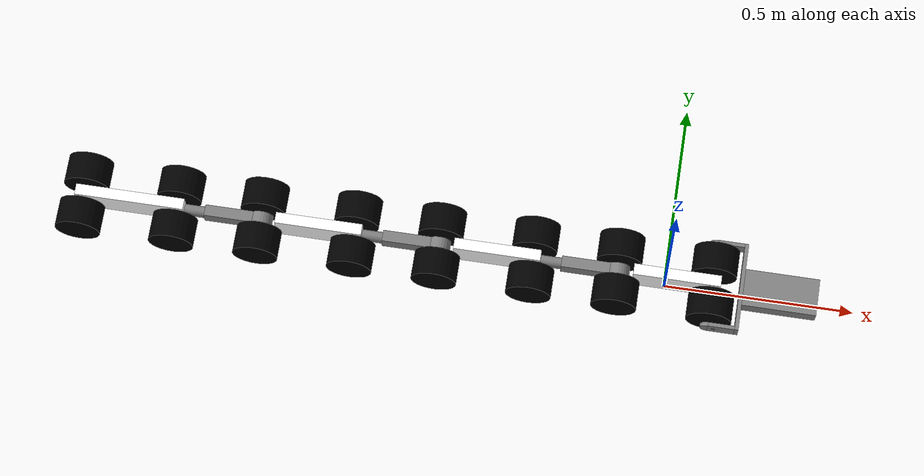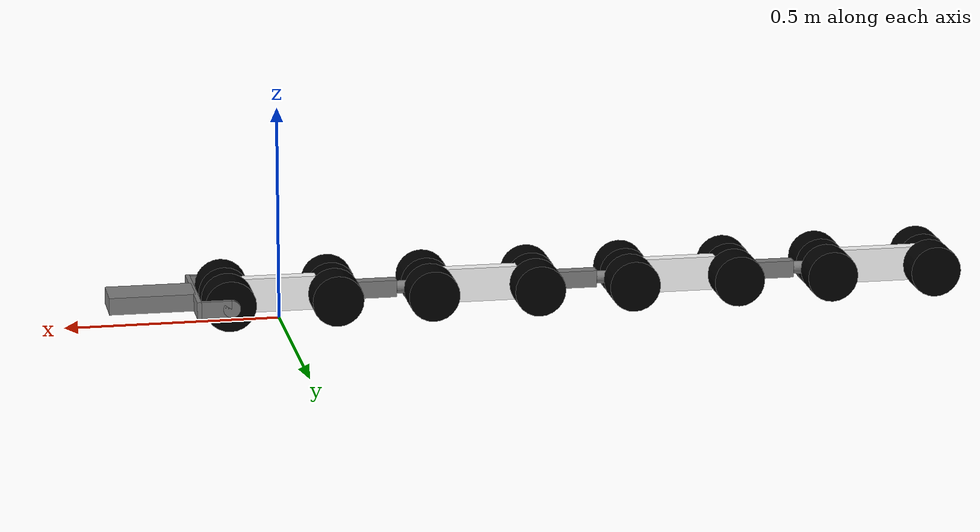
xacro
<?xml version="1.0"?>
<robot xmlns:xacro="http://www.ros.org/wiki/xacro"  name="reseq_gazebo">

  <xacro:arg name="use_ros2_control" default="true"/>
  <xacro:arg name="sim_mode" default="false"/>

  <xacro:include filename="inertial_macros.xacro" />
  <xacro:include filename="reseq_parameters.xacro" />
  <xacro:include filename="reseq_body.xacro" />
  <xacro:include filename="reseq_arm_mk1.xacro" />
  <xacro:include filename="ros2_control.xacro" />

</robot>

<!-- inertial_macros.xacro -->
<robot xmlns:xacro="http://www.ros.org/wiki/xacro" >

    <!-- Specify some standard inertial calculations https://en.wikipedia.org/wiki/List_of_moments_of_inertia -->
    <!-- These make use of xacro's mathematical functionality -->

    <xacro:macro name="inertial_sphere" params="mass radius *origin">
        <inertial>
            <xacro:insert_block name="origin"/>
            <mass value="${mass}" />
            <inertia ixx="${(2/5) * mass * (radius*radius)}" ixy="0.0" ixz="0.0"
                    iyy="${(2/5) * mass * (radius*radius)}" iyz="0.0"
                    izz="${(2/5) * mass * (radius*radius)}" />
        </inertial>
    </xacro:macro>

    <xacro:macro name="inertial_box" params="mass x y z *origin">
        <inertial>
            <xacro:insert_block name="origin"/>
            <mass value="${mass}" />
            <inertia ixx="${(1/12) * mass * (y*y+z*z)}" ixy="0.0" ixz="0.0"
                    iyy="${(1/12) * mass * (x*x+z*z)}" iyz="0.0"
                    izz="${(1/12) * mass * (x*x+y*y)}" />
        </inertial>
    </xacro:macro>

    <!-- definition of three inertial cylinder with different inertial matrix according to the orientation of
    the axis aligned to the cylinder length-->

    <!-- x axis is aligned to the cylinder length -->
    <xacro:macro name="inertial_cylinder_x" params="mass length radius *origin">
        <inertial>
            <xacro:insert_block name="origin"/>
            <mass value="${mass}" />
            <inertia ixx="${(1/2) * mass * (radius*radius)}" ixy="0.0" ixz="0.0"
                    iyy="${(1/12) * mass * (3*radius*radius + length*length)}" iyz="0.0"
                    izz="${(1/12) * mass * (3*radius*radius + length*length)}" />

        </inertial>
    </xacro:macro>

    <!-- y axis is aligned to the cylinder length -->
    <xacro:macro name="inertial_cylinder_y" params="mass length radius *origin">
        <inertial>
            <xacro:insert_block name="origin"/>
            <mass value="${mass}" />
            <inertia ixx="${(1/12) * mass * (3*radius*radius + length*length)}" ixy="0.0" ixz="0.0"
                    iyy="${(1/2) * mass * (radius*radius)}" iyz="0.0"
                    izz="${(1/12) * mass * (3*radius*radius + length*length)}" />
        </inertial>
    </xacro:macro>

    <!-- z axis is aligned to the cylinder length -->
    <xacro:macro name="inertial_cylinder_z" params="mass length radius *origin">
        <inertial>
            <xacro:insert_block name="origin"/>
            <mass value="${mass}" />
            <inertia ixx="${(1/12) * mass * (3*radius*radius + length*length)}" ixy="0.0" ixz="0.0"
                    iyy="${(1/12) * mass * (3*radius*radius + length*length)}" iyz="0.0"
                    izz="${(1/2) * mass * (radius*radius)}" />
        </inertial>
    </xacro:macro>

</robot>

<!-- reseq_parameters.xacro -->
<robot xmlns:xacro="http://www.ros.org/wiki/xacro">

  <!-- See 'Parameters.pdf' pdf for parameters meaning (when it will exist ;) ) -->
  <!-- All values are in meters, radiants, kg -->

  <xacro:property name="toll" value="0.01"/>

  <!-- chassis related -->
  <xacro:property name="WheelBase" value="0.25"/>
  <xacro:property name="EquivalentWheelDiameter" value="0.12"/>
  <xacro:property name="ModuleWidth" value="0.2"/>
  <xacro:property name="TrackWidth" value="0.075"/>
  <xacro:property name="ChassisTopAndBottomClearance" value="0.02"/>

  <xacro:property name="WheelMass" value="0.1"/>
  <xacro:property name="ChassisMass" value="2.5"/>

  <!-- joint related -->
  <xacro:property name="JointDiameter" value="0.06"/>
  <xacro:property name="JointA" value="0.15"/>
  <xacro:property name="JointB" value="0.2"/>
  <xacro:property name="JointABottomClearance" value="0.04"/>

  <xacro:property name="pitch" value="${pi/2}"/>
  <xacro:property name="roll" value="${pi*0.9}"/>
  <xacro:property name="yaw" value="${pi/4}"/>

  <xacro:property name="JointAMass" value="0.1"/>
  <xacro:property name="JointBMass" value="0.05"/>

  <!-- arm related -->
  <xacro:property name="ForkThickness" value="0.01"/>
  <xacro:property name="ForkHeight" value="0.04"/>
  <xacro:property name="JetsonHolderLength" value="0.2"/>
  <xacro:property name="JetsonHolderWidth" value="0.1"/>

  <!-- Colors (from 0 to 1) -->
  <material name="ChassisColor">
    <color rgba="1 1 1 1" />
  </material>
  <material name="WheelColor">
    <color rgba="0 0 0 1" />
  </material>
  <material name="JointColor">
    <color rgba="0.5 0.5 0.5 1" />
  </material>
  <material name="ArmColor">
    <color rgba="0.5 0.5 0.5 1" />
  </material>

</robot>

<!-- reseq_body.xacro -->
<robot xmlns:xacro="http://www.ros.org/wiki/xacro"  name="reseq_gazebo">

  <!-- This is a parametric description of reseq with 4 modules -->

  <!-- BASE LINK (center of equivalent wheel of module 1)-->
  <link name="base_link" />

  <!-- CHASSIS1 -->
  <joint name="chassis1_joint" type="fixed">
    <parent link="base_link"/>
    <child link="chassis1_link"/>
    <!-- leaving 1/3 of the EquivalentWheelDiameter from front (origin is in the center of eq wheel, at the bottom of the chassis) -->
    <origin xyz="0 0 ${(EquivalentWheelDiameter-2*ChassisTopAndBottomClearance)/2+ChassisTopAndBottomClearance}"/>
  </joint>

  <link name="chassis1_link">
    <visual>
      <origin xyz="${EquivalentWheelDiameter/12+(toll+JointDiameter/2)/2} 0 0"/>
      <geometry>
        <!-- leaving 1/3 of the EquivalentWheelDiameter from front and toll from Joint and Tracks (for clearance) -->
        <box size="${WheelBase-JointDiameter/2-toll+EquivalentWheelDiameter*2/3-EquivalentWheelDiameter/2} ${ModuleWidth-2*TrackWidth-2*toll} ${EquivalentWheelDiameter-2*ChassisTopAndBottomClearance}"/>
      </geometry>
      <material name="ChassisColor"/>
    </visual>

    <collision>
      <origin xyz="${EquivalentWheelDiameter/12+(toll+JointDiameter/2)/2} 0 0"/>
      <geometry>
        <!-- leaving 1/3 of the EquivalentWheelDiameter from front and toll from Joint and Tracks (for clearance) -->
        <box size="${WheelBase-JointDiameter/2-toll+EquivalentWheelDiameter*2/3-EquivalentWheelDiameter/2} ${ModuleWidth-2*TrackWidth-2*toll} ${EquivalentWheelDiameter-2*ChassisTopAndBottomClearance}"/>
      </geometry>
    </collision>

    <xacro:inertial_box mass="${ChassisMass}" x="${WheelBase-JointDiameter/2-toll+EquivalentWheelDiameter*2/3-EquivalentWheelDiameter/2}" y="${ModuleWidth-2*TrackWidth-2*toll}" z="${EquivalentWheelDiameter-2*ChassisTopAndBottomClearance}">
      <origin xyz="${EquivalentWheelDiameter/12+(toll+JointDiameter/2)/2} 0 0" rpy="0 0 0"/>
    </xacro:inertial_box>
  </link>

  <gazebo reference="chassis1_link">
    <material>Gazebo/White</material>
  </gazebo>

  <!-- LEFT FRONT WHEEL 1-->
  <joint name="left_front_wheel_1_joint" type="continuous">
    <parent link="chassis1_link"/>
    <child link="left_front_wheel_1_link"/>
    <origin xyz="${WheelBase/2} ${ModuleWidth/2-TrackWidth/2} 0" rpy="-${pi/2} 0 0" />
    <axis xyz="0 0 1"/>
  </joint>

  <link name="left_front_wheel_1_link">
    <visual>
      <geometry>
        <cylinder radius="${EquivalentWheelDiameter/2}" length="${TrackWidth}"/>
      </geometry>
      <material name="WheelColor"/>
    </visual>

    <collision>
      <geometry>
        <cylinder radius="${EquivalentWheelDiameter/2}" length="${TrackWidth}"/>
      </geometry>
    </collision>

    <xacro:inertial_cylinder mass="${WheelMass}" length="${TrackWidth}" radius="${EquivalentWheelDiameter/2}">
      <origin xyz="0 0 0" rpy="0 0 0"/>
    </xacro:inertial_cylinder>
  </link>

  <gazebo reference="left_front_wheel_1_link">
    <material>Gazebo/Black</material>
  </gazebo>

  <!-- RIGHT FRONT WHEEL 1-->
  <joint name="right_front_wheel_1_joint" type="continuous">
    <parent link="chassis1_link"/>
    <child link="right_front_wheel_1_link"/>
    <origin xyz="${WheelBase/2} ${-ModuleWidth/2+TrackWidth/2} 0" rpy="${pi/2} 0 0" />
    <axis xyz="0 0 -1"/>
  </joint>

  <link name="right_front_wheel_1_link">
    <visual>
      <geometry>
        <cylinder radius="${EquivalentWheelDiameter/2}" length="${TrackWidth}"/>
      </geometry>
      <material name="WheelColor"/>
    </visual>

    <collision>
      <geometry>
        <cylinder radius="${EquivalentWheelDiameter/2}" length="${TrackWidth}"/>
      </geometry>
    </collision>

    <xacro:inertial_cylinder mass="${WheelMass}" length="${TrackWidth}" radius="${EquivalentWheelDiameter/2}">
      <origin xyz="0 0 0" rpy="0 0 0"/>
    </xacro:inertial_cylinder>
  </link>

  <gazebo reference="right_front_wheel_1_link">
    <material>Gazebo/Black</material>
  </gazebo>

  <!-- LEFT BACK WHEEL 1-->
  <joint name="left_back_wheel_1_joint" type="continuous">
    <parent link="chassis1_link"/>
    <child link="left_back_wheel_1_link"/>
    <origin xyz="${-WheelBase/2} ${ModuleWidth/2-TrackWidth/2} 0" rpy="-${pi/2} 0 0" />
    <axis xyz="0 0 1"/>
  </joint>

  <link name="left_back_wheel_1_link">
    <visual>
      <geometry>
        <cylinder radius="${EquivalentWheelDiameter/2}" length="${TrackWidth}"/>
      </geometry>
      <material name="WheelColor"/>
    </visual>

    <collision>
      <geometry>
        <cylinder radius="${EquivalentWheelDiameter/2}" length="${TrackWidth}"/>
      </geometry>
    </collision>

    <xacro:inertial_cylinder mass="${WheelMass}" length="${TrackWidth}" radius="${EquivalentWheelDiameter/2}">
      <origin xyz="0 0 0" rpy="0 0 0"/>
    </xacro:inertial_cylinder>
  </link>

  <gazebo reference="left_back_wheel_1_link">
    <material>Gazebo/Black</material>
  </gazebo>

  <!-- RIGHT BACK WHEEL 1-->
  <joint name="right_back_wheel_1_joint" type="continuous">
    <parent link="chassis1_link"/>
    <child link="right_back_wheel_1_link"/>
    <origin xyz="${-WheelBase/2} ${-ModuleWidth/2+TrackWidth/2} 0" rpy="${pi/2} 0 0" />
    <axis xyz="0 0 -1"/>
  </joint>

  <link name="right_back_wheel_1_link">
    <visual>
      <geometry>
        <cylinder radius="${EquivalentWheelDiameter/2}" length="${TrackWidth}"/>
      </geometry>
      <material name="WheelColor"/>
    </visual>

    <collision>
      <geometry>
        <cylinder radius="${EquivalentWheelDiameter/2}" length="${TrackWidth}"/>
      </geometry>
    </collision>

    <xacro:inertial_cylinder mass="${WheelMass}" length="${TrackWidth}" radius="${EquivalentWheelDiameter/2}">
      <origin xyz="0 0 0" rpy="0 0 0"/>
    </xacro:inertial_cylinder>
  </link>

  <gazebo reference="right_back_wheel_1_link">
    <material>Gazebo/Black</material>
  </gazebo>

  <!-- JointA 1-->
  <joint name="joint_a_1_joint" type="revolute">
    <parent link="chassis1_link"/>
    <child link="joint_a_1_link"/>
    <!-- Effort in Nm -->
    <limit effort="20.0" lower="${-pitch}" upper="${pitch}" velocity="0.5"/>
    <origin xyz="${-WheelBase/2} 0 0" rpy="${pi/2} 0 0" />
    <axis xyz="0 0 -1"/>
  </joint>

  <link name="joint_a_1_link">
    <!-- gearbox cilinder -->
    <visual>
      <geometry>
        <cylinder radius="${JointDiameter/2}" length="${ModuleWidth-2*TrackWidth-toll*2}"/>
      </geometry>
      <material name="JointColor"/>
    </visual>
    <!-- horizontal shaft -->
    <visual>
      <origin xyz="${-JointA/2} 0 0" />
      <geometry>
        <box size="${JointA} ${EquivalentWheelDiameter-2*JointABottomClearance} ${ModuleWidth-2*TrackWidth-toll*2}"/>
      </geometry>
      <material name="JointColor"/>
    </visual>
    <!-- to hide space wile rotating -->
    <visual>
      <origin xyz="${-JointA} 0 0" />
      <geometry>
        <sphere radius="${(ModuleWidth-2*TrackWidth-toll*2)/2}"/>
      </geometry>
      <material name="JointColor"/>
    </visual>

    <!-- gearbox cilinder -->
    <collision>
      <geometry>
        <cylinder radius="${JointDiameter/2}" length="${ModuleWidth-2*TrackWidth-toll*2}"/>
      </geometry>
    </collision>
    <!-- horizontal shaft -->
    <collision>
      <origin xyz="${-JointA/2} 0 0" />
      <geometry>
        <box size="${JointA} ${EquivalentWheelDiameter-2*JointABottomClearance} ${ModuleWidth-2*TrackWidth-toll*2}"/>
      </geometry>
    </collision>

    <xacro:inertial_box mass="${JointAMass}" x="${JointA}" y="${EquivalentWheelDiameter-2*JointABottomClearance}" z="${ModuleWidth-2*TrackWidth-toll*2}">
      <origin xyz="${-JointA/2} 0 0" rpy="0 0 0"/>
    </xacro:inertial_box>
  </link>

  <gazebo reference="joint_a_1_link">
    <material>Gazebo/Grey</material>
  </gazebo>

  <!-- JointB 1-->
  <joint name="joint_b_1_joint" type="revolute">
    <parent link="joint_a_1_link"/>
    <child link="joint_b_1_link"/>
    <!-- Effort in Nm -->
    <limit effort="20.0" lower="${-yaw}" upper="${yaw}" velocity="0.5"/>
    <origin xyz="${-JointA} 0 0" rpy="0 ${pi/2} 0" />
    <axis xyz="0 1 0"/>
  </joint>

  <link name="joint_b_1_link">
    <visual>
      <origin xyz="0 0 ${-(JointB-WheelBase/2-EquivalentWheelDiameter/6)/2}" />
      <geometry>
        <cylinder radius="${(ModuleWidth-2*TrackWidth-toll*2)/2}" length="${JointB-WheelBase/2-EquivalentWheelDiameter/6}"/>
      </geometry>
      <material name="JointColor"/>
    </visual>

    <xacro:inertial_cylinder mass="${JointBMass}" length="${JointB-WheelBase/2-EquivalentWheelDiameter/6}" radius="${(ModuleWidth-2*TrackWidth-toll*2)/2}">
      <origin xyz="0 0 ${-(JointB-WheelBase/2-EquivalentWheelDiameter/6)/2}" rpy="0 0 0"/>
    </xacro:inertial_cylinder>
  </link>

  <gazebo reference="joint_b_1_link">
    <material>Gazebo/Grey</material>
  </gazebo>

  <!-- CHASSIS2 -->
  <joint name="chassis2_joint" type="revolute">
    <parent link="joint_b_1_link"/>
    <child link="chassis2_link"/>
    <!-- Effort in Nm -->
    <limit effort="2.0" lower="${-roll}" upper="${roll}" velocity="0.5"/>
    <!-- leaving 1/3 of the EquivalentWheelDiameter from front (origin is in the center of eq wheel, at the bottom of the chassis) -->
    <origin xyz="0 0 ${-JointB}" rpy="${-pi/2} ${-pi/2} 0"/>
    <axis xyz="1 0 0"/>
  </joint>

  <link name="chassis2_link">
    <visual>
      <origin xyz="${EquivalentWheelDiameter/12+(toll+JointDiameter/2)/2} 0 0"/>
      <geometry>
        <!-- leaving 1/3 of the EquivalentWheelDiameter from front and toll from Joint and Tracks (for clearance) -->
        <box size="${WheelBase-JointDiameter/2-toll+EquivalentWheelDiameter*2/3-EquivalentWheelDiameter/2} ${ModuleWidth-2*TrackWidth-2*toll} ${EquivalentWheelDiameter-2*ChassisTopAndBottomClearance}"/>
      </geometry>
      <material name="ChassisColor"/>
    </visual>

    <collision>
      <origin xyz="${EquivalentWheelDiameter/12+(toll+JointDiameter/2)/2} 0 0"/>
      <geometry>
        <!-- leaving 1/3 of the EquivalentWheelDiameter from front and toll from Joint and Tracks (for clearance) -->
        <box size="${WheelBase-JointDiameter/2-toll+EquivalentWheelDiameter*2/3-EquivalentWheelDiameter/2} ${ModuleWidth-2*TrackWidth-2*toll} ${EquivalentWheelDiameter-2*ChassisTopAndBottomClearance}"/>
      </geometry>
    </collision>

    <xacro:inertial_box mass="${ChassisMass}" x="${WheelBase-JointDiameter/2-toll+EquivalentWheelDiameter*2/3-EquivalentWheelDiameter/2}" y="${ModuleWidth-2*TrackWidth-2*toll}" z="${EquivalentWheelDiameter-2*ChassisTopAndBottomClearance}">
      <origin xyz="${EquivalentWheelDiameter/12+(toll+JointDiameter/2)/2} 0 0" rpy="0 0 0"/>
    </xacro:inertial_box>
  </link>

  <gazebo reference="chassis2_link">
    <material>Gazebo/White</material>
  </gazebo>

  <!-- LEFT FRONT WHEEL 2-->
  <joint name="left_front_wheel_2_joint" type="continuous">
    <parent link="chassis2_link"/>
    <child link="left_front_wheel_2_link"/>
    <origin xyz="${WheelBase/2} ${ModuleWidth/2-TrackWidth/2} 0" rpy="-${pi/2} 0 0" />
    <axis xyz="0 0 1"/>
  </joint>

  <link name="left_front_wheel_2_link">
    <visual>
      <geometry>
        <cylinder radius="${EquivalentWheelDiameter/2}" length="${TrackWidth}"/>
      </geometry>
      <material name="WheelColor"/>
    </visual>

    <collision>
      <geometry>
        <cylinder radius="${EquivalentWheelDiameter/2}" length="${TrackWidth}"/>
      </geometry>
    </collision>

    <xacro:inertial_cylinder mass="${WheelMass}" length="${TrackWidth}" radius="${EquivalentWheelDiameter/2}">
      <origin xyz="0 0 0" rpy="0 0 0"/>
    </xacro:inertial_cylinder>
  </link>

  <gazebo reference="left_front_wheel_2_link">
    <material>Gazebo/Black</material>
  </gazebo>

  <!-- RIGHT FRONT WHEEL 2-->
  <joint name="right_front_wheel_2_joint" type="continuous">
    <parent link="chassis2_link"/>
    <child link="right_front_wheel_2_link"/>
    <origin xyz="${WheelBase/2} ${-ModuleWidth/2+TrackWidth/2} 0" rpy="${pi/2} 0 0" />
    <axis xyz="0 0 -1"/>
  </joint>

  <link name="right_front_wheel_2_link">
    <visual>
      <geometry>
        <cylinder radius="${EquivalentWheelDiameter/2}" length="${TrackWidth}"/>
      </geometry>
      <material name="WheelColor"/>
    </visual>

    <collision>
      <geometry>
        <cylinder radius="${EquivalentWheelDiameter/2}" length="${TrackWidth}"/>
      </geometry>
    </collision>

    <xacro:inertial_cylinder mass="${WheelMass}" length="${TrackWidth}" radius="${EquivalentWheelDiameter/2}">
      <origin xyz="0 0 0" rpy="0 0 0"/>
    </xacro:inertial_cylinder>
  </link>

  <gazebo reference="right_front_wheel_2_link">
    <material>Gazebo/Black</material>
  </gazebo>

  <!-- LEFT BACK WHEEL 2-->
  <joint name="left_back_wheel_2_joint" type="continuous">
    <parent link="chassis2_link"/>
    <child link="left_back_wheel_2_link"/>
    <origin xyz="${-WheelBase/2} ${ModuleWidth/2-TrackWidth/2} 0" rpy="-${pi/2} 0 0" />
    <axis xyz="0 0 1"/>
  </joint>

  <link name="left_back_wheel_2_link">
    <visual>
      <geometry>
        <cylinder radius="${EquivalentWheelDiameter/2}" length="${TrackWidth}"/>
      </geometry>
      <material name="WheelColor"/>
    </visual>

    <collision>
      <geometry>
        <cylinder radius="${EquivalentWheelDiameter/2}" length="${TrackWidth}"/>
      </geometry>
    </collision>

    <xacro:inertial_cylinder mass="${WheelMass}" length="${TrackWidth}" radius="${EquivalentWheelDiameter/2}">
      <origin xyz="0 0 0" rpy="0 0 0"/>
    </xacro:inertial_cylinder>
  </link>

  <gazebo reference="left_back_wheel_2_link">
    <material>Gazebo/Black</material>
  </gazebo>

  <!-- RIGHT BACK WHEEL 2-->
  <joint name="right_back_wheel_2_joint" type="continuous">
    <parent link="chassis2_link"/>
    <child link="right_back_wheel_2_link"/>
    <origin xyz="${-WheelBase/2} ${-ModuleWidth/2+TrackWidth/2} 0" rpy="${pi/2} 0 0" />
    <axis xyz="0 0 -1"/>
  </joint>

  <link name="right_back_wheel_2_link">
    <visual>
      <geometry>
        <cylinder radius="${EquivalentWheelDiameter/2}" length="${TrackWidth}"/>
      </geometry>
      <material name="WheelColor"/>
    </visual>

    <collision>
      <geometry>
        <cylinder radius="${EquivalentWheelDiameter/2}" length="${TrackWidth}"/>
      </geometry>
    </collision>

    <xacro:inertial_cylinder mass="${WheelMass}" length="${TrackWidth}" radius="${EquivalentWheelDiameter/2}">
      <origin xyz="0 0 0" rpy="0 0 0"/>
    </xacro:inertial_cylinder>
  </link>

  <gazebo reference="right_back_wheel_2_link">
    <material>Gazebo/Black</material>
  </gazebo>

  <!-- JointA 2-->
  <joint name="joint_a_2_joint" type="revolute">
    <parent link="chassis2_link"/>
    <child link="joint_a_2_link"/>
    <!-- Effort in Nm -->
    <limit effort="20.0" lower="${-pitch}" upper="${pitch}" velocity="0.5"/>
    <origin xyz="${-WheelBase/2} 0 0" rpy="${pi/2} 0 0" />
    <axis xyz="0 0 -1"/>
  </joint>

  <link name="joint_a_2_link">
    <!-- gearbox cilinder -->
    <visual>
      <geometry>
        <cylinder radius="${JointDiameter/2}" length="${ModuleWidth-2*TrackWidth-toll*2}"/>
      </geometry>
      <material name="JointColor"/>
    </visual>
    <!-- horizontal shaft -->
    <visual>
      <origin xyz="${-JointA/2} 0 0" />
      <geometry>
        <box size="${JointA} ${EquivalentWheelDiameter-2*JointABottomClearance} ${ModuleWidth-2*TrackWidth-toll*2}"/>
      </geometry>
      <material name="JointColor"/>
    </visual>
    <!-- to hide space wile rotating -->
    <visual>
      <origin xyz="${-JointA} 0 0" />
      <geometry>
        <sphere radius="${(ModuleWidth-2*TrackWidth-toll*2)/2}"/>
      </geometry>
      <material name="JointColor"/>
    </visual>

    <!-- gearbox cilinder -->
    <collision>
      <geometry>
        <cylinder radius="${JointDiameter/2}" length="${ModuleWidth-2*TrackWidth-toll*2}"/>
      </geometry>
    </collision>
    <!-- horizontal shaft -->
    <collision>
      <origin xyz="${-JointA/2} 0 0" />
      <geometry>
        <box size="${JointA} ${EquivalentWheelDiameter-2*JointABottomClearance} ${ModuleWidth-2*TrackWidth-toll*2}"/>
      </geometry>
    </collision>

    <xacro:inertial_box mass="${JointAMass}" x="${JointA}" y="${EquivalentWheelDiameter-2*JointABottomClearance}" z="${ModuleWidth-2*TrackWidth-toll*2}">
      <origin xyz="${-JointA/2} 0 0" rpy="0 0 0"/>
    </xacro:inertial_box>
  </link>

  <gazebo reference="joint_a_2_link">
    <material>Gazebo/Grey</material>
  </gazebo>

  <!-- JointB 2-->
  <joint name="joint_b_2_joint" type="revolute">
    <parent link="joint_a_2_link"/>
    <child link="joint_b_2_link"/>
    <!-- Effort in Nm -->
    <limit effort="20.0" lower="${-yaw}" upper="${yaw}" velocity="0.5"/>
    <origin xyz="${-JointA} 0 0" rpy="0 ${pi/2} 0" />
    <axis xyz="0 1 0"/>
  </joint>

  <link name="joint_b_2_link">
    <visual>
      <origin xyz="0 0 ${-(JointB-WheelBase/2-EquivalentWheelDiameter/6)/2}" />
      <geometry>
        <cylinder radius="${(ModuleWidth-2*TrackWidth-toll*2)/2}" length="${JointB-WheelBase/2-EquivalentWheelDiameter/6}"/>
      </geometry>
      <material name="JointColor"/>
    </visual>

    <xacro:inertial_cylinder mass="${JointBMass}" length="${JointB-WheelBase/2-EquivalentWheelDiameter/6}" radius="${(ModuleWidth-2*TrackWidth-toll*2)/2}">
      <origin xyz="0 0 ${-(JointB-WheelBase/2-EquivalentWheelDiameter/6)/2}" rpy="0 0 0"/>
    </xacro:inertial_cylinder>
  </link>

  <gazebo reference="joint_b_2_link">
    <material>Gazebo/Grey</material>
  </gazebo>

  <!-- CHASSIS3 -->
  <joint name="chassis3_joint" type="revolute">
    <parent link="joint_b_2_link"/>
    <child link="chassis3_link"/>
    <!-- Effort in Nm -->
    <limit effort="2.0" lower="${-roll}" upper="${roll}" velocity="0.5"/>
    <!-- leaving 1/3 of the EquivalentWheelDiameter from front (origin is in the center of eq wheel, at the bottom of the chassis) -->
    <origin xyz="0 0 ${-JointB}" rpy="${-pi/2} ${-pi/2} 0"/>
    <axis xyz="1 0 0"/>
  </joint>

  <link name="chassis3_link">
    <visual>
      <origin xyz="${EquivalentWheelDiameter/12+(toll+JointDiameter/2)/2} 0 0"/>
      <geometry>
        <!-- leaving 1/3 of the EquivalentWheelDiameter from front and toll from Joint and Tracks (for clearance) -->
        <box size="${WheelBase-JointDiameter/2-toll+EquivalentWheelDiameter*2/3-EquivalentWheelDiameter/2} ${ModuleWidth-2*TrackWidth-2*toll} ${EquivalentWheelDiameter-2*ChassisTopAndBottomClearance}"/>
      </geometry>
      <material name="ChassisColor"/>
    </visual>

    <collision>
      <origin xyz="${EquivalentWheelDiameter/12+(toll+JointDiameter/2)/2} 0 0"/>
      <geometry>
        <!-- leaving 1/3 of the EquivalentWheelDiameter from front and toll from Joint and Tracks (for clearance) -->
        <box size="${WheelBase-JointDiameter/2-toll+EquivalentWheelDiameter*2/3-EquivalentWheelDiameter/2} ${ModuleWidth-2*TrackWidth-2*toll} ${EquivalentWheelDiameter-2*ChassisTopAndBottomClearance}"/>
      </geometry>
    </collision>

    <xacro:inertial_box mass="${ChassisMass}" x="${WheelBase-JointDiameter/2-toll+EquivalentWheelDiameter*2/3-EquivalentWheelDiameter/2}" y="${ModuleWidth-2*TrackWidth-2*toll}" z="${EquivalentWheelDiameter-2*ChassisTopAndBottomClearance}">
      <origin xyz="${EquivalentWheelDiameter/12+(toll+JointDiameter/2)/2} 0 0" rpy="0 0 0"/>
    </xacro:inertial_box>
  </link>

  <gazebo reference="chassis3_link">
    <material>Gazebo/White</material>
  </gazebo>

  <!-- LEFT FRONT WHEEL 3-->
  <joint name="left_front_wheel_3_joint" type="continuous">
    <parent link="chassis3_link"/>
    <child link="left_front_wheel_3_link"/>
    <origin xyz="${WheelBase/2} ${ModuleWidth/2-TrackWidth/2} 0" rpy="-${pi/2} 0 0" />
    <axis xyz="0 0 1"/>
  </joint>

  <link name="left_front_wheel_3_link">
    <visual>
      <geometry>
        <cylinder radius="${EquivalentWheelDiameter/2}" length="${TrackWidth}"/>
      </geometry>
      <material name="WheelColor"/>
    </visual>

    <collision>
      <geometry>
        <cylinder radius="${EquivalentWheelDiameter/2}" length="${TrackWidth}"/>
      </geometry>
    </collision>

    <xacro:inertial_cylinder mass="${WheelMass}" length="${TrackWidth}" radius="${EquivalentWheelDiameter/2}">
      <origin xyz="0 0 0" rpy="0 0 0"/>
    </xacro:inertial_cylinder>
  </link>

  <gazebo reference="left_front_wheel_3_link">
    <material>Gazebo/Black</material>
  </gazebo>

  <!-- RIGHT FRONT WHEEL 3-->
  <joint name="right_front_wheel_3_joint" type="continuous">
    <parent link="chassis3_link"/>
    <child link="right_front_wheel_3_link"/>
    <origin xyz="${WheelBase/2} ${-ModuleWidth/2+TrackWidth/2} 0" rpy="${pi/2} 0 0" />
    <axis xyz="0 0 -1"/>
  </joint>

  <link name="right_front_wheel_3_link">
    <visual>
      <geometry>
        <cylinder radius="${EquivalentWheelDiameter/2}" length="${TrackWidth}"/>
      </geometry>
      <material name="WheelColor"/>
    </visual>

    <collision>
      <geometry>
        <cylinder radius="${EquivalentWheelDiameter/2}" length="${TrackWidth}"/>
      </geometry>
    </collision>

    <xacro:inertial_cylinder mass="${WheelMass}" length="${TrackWidth}" radius="${EquivalentWheelDiameter/2}">
      <origin xyz="0 0 0" rpy="0 0 0"/>
    </xacro:inertial_cylinder>
  </link>

  <gazebo reference="right_front_wheel_3_link">
    <material>Gazebo/Black</material>
  </gazebo>

  <!-- LEFT BACK WHEEL 3-->
  <joint name="left_back_wheel_3_joint" type="continuous">
    <parent link="chassis3_link"/>
    <child link="left_back_wheel_3_link"/>
    <origin xyz="${-WheelBase/2} ${ModuleWidth/2-TrackWidth/2} 0" rpy="-${pi/2} 0 0" />
    <axis xyz="0 0 1"/>
  </joint>

  <link name="left_back_wheel_3_link">
    <visual>
      <geometry>
        <cylinder radius="${EquivalentWheelDiameter/2}" length="${TrackWidth}"/>
      </geometry>
      <material name="WheelColor"/>
    </visual>

    <collision>
      <geometry>
        <cylinder radius="${EquivalentWheelDiameter/2}" length="${TrackWidth}"/>
      </geometry>
    </collision>

    <xacro:inertial_cylinder mass="${WheelMass}" length="${TrackWidth}" radius="${EquivalentWheelDiameter/2}">
      <origin xyz="0 0 0" rpy="0 0 0"/>
    </xacro:inertial_cylinder>
  </link>

  <gazebo reference="left_back_wheel_3_link">
    <material>Gazebo/Black</material>
  </gazebo>

  <!-- RIGHT BACK WHEEL 3-->
  <joint name="right_back_wheel_3_joint" type="continuous">
    <parent link="chassis3_link"/>
    <child link="right_back_wheel_3_link"/>
    <origin xyz="${-WheelBase/2} ${-ModuleWidth/2+TrackWidth/2} 0" rpy="${pi/2} 0 0" />
    <axis xyz="0 0 -1"/>
  </joint>

  <link name="right_back_wheel_3_link">
    <visual>
      <geometry>
        <cylinder radius="${EquivalentWheelDiameter/2}" length="${TrackWidth}"/>
      </geometry>
      <material name="WheelColor"/>
    </visual>

    <collision>
      <geometry>
        <cylinder radius="${EquivalentWheelDiameter/2}" length="${TrackWidth}"/>
      </geometry>
    </collision>

    <xacro:inertial_cylinder mass="${WheelMass}" length="${TrackWidth}" radius="${EquivalentWheelDiameter/2}">
      <origin xyz="0 0 0" rpy="0 0 0"/>
    </xacro:inertial_cylinder>
  </link>

  <gazebo reference="right_back_wheel_3_link">
    <material>Gazebo/Black</material>
  </gazebo>

  <!-- JointA 3-->
  <joint name="joint_a_3_joint" type="revolute">
    <parent link="chassis3_link"/>
    <child link="joint_a_3_link"/>
    <!-- Effort in Nm -->
    <limit effort="20.0" lower="${-pitch}" upper="${pitch}" velocity="0.5"/>
    <origin xyz="${-WheelBase/2} 0 0" rpy="${pi/2} 0 0" />
    <axis xyz="0 0 -1"/>
  </joint>

  <link name="joint_a_3_link">
    <!-- gearbox cilinder -->
    <visual>
      <geometry>
        <cylinder radius="${JointDiameter/2}" length="${ModuleWidth-2*TrackWidth-toll*2}"/>
      </geometry>
      <material name="JointColor"/>
    </visual>
    <!-- horizontal shaft -->
    <visual>
      <origin xyz="${-JointA/2} 0 0" />
      <geometry>
        <box size="${JointA} ${EquivalentWheelDiameter-2*JointABottomClearance} ${ModuleWidth-2*TrackWidth-toll*2}"/>
      </geometry>
      <material name="JointColor"/>
    </visual>
    <!-- to hide space wile rotating -->
    <visual>
      <origin xyz="${-JointA} 0 0" />
      <geometry>
        <sphere radius="${(ModuleWidth-2*TrackWidth-toll*2)/2}"/>
      </geometry>
      <material name="JointColor"/>
    </visual>

    <!-- gearbox cilinder -->
    <collision>
      <geometry>
        <cylinder radius="${JointDiameter/2}" length="${ModuleWidth-2*TrackWidth-toll*2}"/>
      </geometry>
    </collision>
    <!-- horizontal shaft -->
    <collision>
      <origin xyz="${-JointA/2} 0 0" />
      <geometry>
        <box size="${JointA} ${EquivalentWheelDiameter-2*JointABottomClearance} ${ModuleWidth-2*TrackWidth-toll*2}"/>
      </geometry>
    </collision>

    <xacro:inertial_box mass="${JointAMass}" x="${JointA}" y="${EquivalentWheelDiameter-2*JointABottomClearance}" z="${ModuleWidth-2*TrackWidth-toll*2}">
      <origin xyz="${-JointA/2} 0 0" rpy="0 0 0"/>
    </xacro:inertial_box>
  </link>

  <gazebo reference="joint_a_3_link">
    <material>Gazebo/Grey</material>
  </gazebo>

  <!-- JointB 3-->
  <joint name="joint_b_3_joint" type="revolute">
    <parent link="joint_a_3_link"/>
    <child link="joint_b_3_link"/>
    <!-- Effort in Nm -->
    <limit effort="20.0" lower="${-yaw}" upper="${yaw}" velocity="0.5"/>
    <origin xyz="${-JointA} 0 0" rpy="0 ${pi/2} 0" />
    <axis xyz="0 1 0"/>
  </joint>

  <link name="joint_b_3_link">
    <visual>
      <origin xyz="0 0 ${-(JointB-WheelBase/2-EquivalentWheelDiameter/6)/2}" />
      <geometry>
        <cylinder radius="${(ModuleWidth-2*TrackWidth-toll*2)/2}" length="${JointB-WheelBase/2-EquivalentWheelDiameter/6}"/>
      </geometry>
      <material name="JointColor"/>
    </visual>

    <xacro:inertial_cylinder mass="${JointBMass}" length="${JointB-WheelBase/2-EquivalentWheelDiameter/6}" radius="${(ModuleWidth-2*TrackWidth-toll*2)/2}">
      <origin xyz="0 0 ${-(JointB-WheelBase/2-EquivalentWheelDiameter/6)/2}" rpy="0 0 0"/>
    </xacro:inertial_cylinder>
  </link>

  <gazebo reference="joint_b_3_link">
    <material>Gazebo/Grey</material>
  </gazebo>

  <!-- CHASSIS4 -->
  <joint name="chassis4_joint" type="revolute">
    <parent link="joint_b_3_link"/>
    <child link="chassis4_link"/>
    <!-- Effort in Nm -->
    <limit effort="2.0" lower="${-roll}" upper="${roll}" velocity="0.5"/>
    <!-- leaving 1/3 of the EquivalentWheelDiameter from front (origin is in the center of eq wheel, at the bottom of the chassis) -->
    <origin xyz="0 0 ${-JointB}" rpy="${-pi/2} ${-pi/2} 0"/>
    <axis xyz="1 0 0"/>
  </joint>

  <link name="chassis4_link">
    <visual>
      <geometry>
        <!-- leaving 1/3 of the EquivalentWheelDiameter from front and back and toll from Joint and Tracks (for clearance) -->
        <box size="${WheelBase+EquivalentWheelDiameter*4/3-EquivalentWheelDiameter} ${ModuleWidth-2*TrackWidth-2*toll} ${EquivalentWheelDiameter-2*ChassisTopAndBottomClearance}"/>
      </geometry>
      <material name="ChassisColor"/>
    </visual>

    <collision>
      <geometry>
        <!-- leaving 1/3 of the EquivalentWheelDiameter from front and back and toll from Joint and Tracks (for clearance) -->
        <box size="${WheelBase+EquivalentWheelDiameter*4/3-EquivalentWheelDiameter} ${ModuleWidth-2*TrackWidth-2*toll} ${EquivalentWheelDiameter-2*ChassisTopAndBottomClearance}"/>
      </geometry>
    </collision>

    <xacro:inertial_box mass="${ChassisMass}" x="${WheelBase-JointDiameter/2-toll+EquivalentWheelDiameter*2/3-EquivalentWheelDiameter/2}" y="${ModuleWidth-2*TrackWidth-2*toll}" z="${EquivalentWheelDiameter-2*ChassisTopAndBottomClearance}">
      <origin xyz="${EquivalentWheelDiameter/12+(toll+JointDiameter/2)/2} 0 0" rpy="0 0 0"/>
    </xacro:inertial_box>
  </link>

  <gazebo reference="chassis4_link">
    <material>Gazebo/White</material>
  </gazebo>

  <!-- LEFT FRONT WHEEL 4-->
  <joint name="left_front_wheel_4_joint" type="continuous">
    <parent link="chassis4_link"/>
    <child link="left_front_wheel_4_link"/>
    <origin xyz="${WheelBase/2} ${ModuleWidth/2-TrackWidth/2} 0" rpy="-${pi/2} 0 0" />
    <axis xyz="0 0 1"/>
  </joint>

  <link name="left_front_wheel_4_link">
    <visual>
      <geometry>
        <cylinder radius="${EquivalentWheelDiameter/2}" length="${TrackWidth}"/>
      </geometry>
      <material name="WheelColor"/>
    </visual>

    <collision>
      <geometry>
        <cylinder radius="${EquivalentWheelDiameter/2}" length="${TrackWidth}"/>
      </geometry>
    </collision>

    <xacro:inertial_cylinder mass="${WheelMass}" length="${TrackWidth}" radius="${EquivalentWheelDiameter/2}">
      <origin xyz="0 0 0" rpy="0 0 0"/>
    </xacro:inertial_cylinder>
  </link>

  <gazebo reference="left_front_wheel_4_link">
    <material>Gazebo/Black</material>
  </gazebo>

  <!-- RIGHT FRONT WHEEL 4-->
  <joint name="right_front_wheel_4_joint" type="continuous">
    <parent link="chassis4_link"/>
    <child link="right_front_wheel_4_link"/>
    <origin xyz="${WheelBase/2} ${-ModuleWidth/2+TrackWidth/2} 0" rpy="${pi/2} 0 0" />
    <axis xyz="0 0 -1"/>
  </joint>

  <link name="right_front_wheel_4_link">
    <visual>
      <geometry>
        <cylinder radius="${EquivalentWheelDiameter/2}" length="${TrackWidth}"/>
      </geometry>
      <material name="WheelColor"/>
    </visual>

    <collision>
      <geometry>
        <cylinder radius="${EquivalentWheelDiameter/2}" length="${TrackWidth}"/>
      </geometry>
    </collision>

    <xacro:inertial_cylinder mass="${WheelMass}" length="${TrackWidth}" radius="${EquivalentWheelDiameter/2}">
      <origin xyz="0 0 0" rpy="0 0 0"/>
    </xacro:inertial_cylinder>
  </link>

  <gazebo reference="right_front_wheel_4_link">
    <material>Gazebo/Black</material>
  </gazebo>

  <!-- LEFT BACK WHEEL 4-->
  <joint name="left_back_wheel_4_joint" type="continuous">
    <parent link="chassis4_link"/>
    <child link="left_back_wheel_4_link"/>
    <origin xyz="${-WheelBase/2} ${ModuleWidth/2-TrackWidth/2} 0" rpy="-${pi/2} 0 0" />
    <axis xyz="0 0 1"/>
  </joint>

  <link name="left_back_wheel_4_link">
    <visual>
      <geometry>
        <cylinder radius="${EquivalentWheelDiameter/2}" length="${TrackWidth}"/>
      </geometry>
      <material name="WheelColor"/>
    </visual>

    <collision>
      <geometry>
        <cylinder radius="${EquivalentWheelDiameter/2}" length="${TrackWidth}"/>
      </geometry>
    </collision>

    <xacro:inertial_cylinder mass="${WheelMass}" length="${TrackWidth}" radius="${EquivalentWheelDiameter/2}">
      <origin xyz="0 0 0" rpy="0 0 0"/>
    </xacro:inertial_cylinder>
  </link>

  <gazebo reference="left_back_wheel_4_link">
    <material>Gazebo/Black</material>
  </gazebo>

  <!-- RIGHT BACK WHEEL 4-->
  <joint name="right_back_wheel_4_joint" type="continuous">
    <parent link="chassis4_link"/>
    <child link="right_back_wheel_4_link"/>
    <origin xyz="${-WheelBase/2} ${-ModuleWidth/2+TrackWidth/2} 0" rpy="${pi/2} 0 0" />
    <axis xyz="0 0 -1"/>
  </joint>

  <link name="right_back_wheel_4_link">
    <visual>
      <geometry>
        <cylinder radius="${EquivalentWheelDiameter/2}" length="${TrackWidth}"/>
      </geometry>
      <material name="WheelColor"/>
    </visual>

    <collision>
      <geometry>
        <cylinder radius="${EquivalentWheelDiameter/2}" length="${TrackWidth}"/>
      </geometry>
    </collision>

    <xacro:inertial_cylinder mass="${WheelMass}" length="${TrackWidth}" radius="${EquivalentWheelDiameter/2}">
      <origin xyz="0 0 0" rpy="0 0 0"/>
    </xacro:inertial_cylinder>
  </link>

  <gazebo reference="right_back_wheel_4_link">
    <material>Gazebo/Black</material>
  </gazebo>

</robot>

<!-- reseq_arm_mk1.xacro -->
<robot xmlns:xacro="http://www.ros.org/wiki/xacro">

  <!-- This is a parametric description of reseq mK1 arm -->

  <joint name="arm_mK1_joint" type="revolute">
    <parent link="chassis1_link"/>
    <child link="arm_mK1_link"/>
    <!-- Effort in Nm, angle in radians -->
    <limit effort="10.0" lower="-${pi*0.001}" upper="${pi/2}" velocity="0.5"/>
    <origin xyz="${WheelBase/2} 0 0" rpy="${pi/2} 0 0" />
    <axis xyz="0 0 1"/>
  </joint>

  <link name="arm_mK1_link">
    <!-- cylinder to the right -->
    <visual>
      <origin xyz="0 0 ${ForkThickness/2+toll+ModuleWidth/2}" />
      <geometry>
        <cylinder radius="${ForkHeight/2}" length="${ForkThickness}"/>
      </geometry>
      <material name="ArmColor"/>
    </visual>
    <!-- cylinder to the left -->
    <visual>
      <origin xyz="0 0 -${ForkThickness/2+toll+ModuleWidth/2}" />
      <geometry>
        <cylinder radius="${ForkHeight/2}" length="${ForkThickness}"/>
      </geometry>
      <material name="ArmColor"/>
    </visual>
    <!-- right side of the fork -->
    <visual>
      <origin xyz="${(toll+EquivalentWheelDiameter/2)/2} 0 ${ForkThickness/2+toll+ModuleWidth/2}" />
      <geometry>
        <box size="${toll+EquivalentWheelDiameter/2} ${ForkHeight} ${ForkThickness}"/>
      </geometry>
      <material name="ArmColor"/>
    </visual>
    <!-- left side of the fork -->
    <visual>
      <origin xyz="${(toll+EquivalentWheelDiameter/2)/2} 0 -${ForkThickness/2+toll+ModuleWidth/2}" />
      <geometry>
        <box size="${toll+EquivalentWheelDiameter/2} ${ForkHeight} ${ForkThickness}"/>
      </geometry>
      <material name="ArmColor"/>
    </visual>
    <!-- front side of the fork -->
    <visual>
      <origin xyz="${ForkThickness/2+toll+EquivalentWheelDiameter/2} 0 0" />
      <geometry>
        <box size="${ForkThickness} ${ForkHeight} ${ModuleWidth+(toll+ForkThickness)*2}"/>
      </geometry>
      <material name="ArmColor"/>
    </visual>
    <!-- Jetson holder -->
    <visual>
      <origin xyz="${ForkThickness/2+toll+EquivalentWheelDiameter/2+JetsonHolderLength/2} 0 0" />
      <geometry>
        <box size="${JetsonHolderLength} ${ForkHeight} ${JetsonHolderWidth}"/>
      </geometry>
      <material name="ArmColor"/>
    </visual>

    <!-- cylinder to the right -->
    <collision>
      <origin xyz="0 0 ${ForkThickness/2+toll+ModuleWidth/2}" />
      <geometry>
        <cylinder radius="${ForkHeight/2}" length="${ForkThickness}"/>
      </geometry>
    </collision>
    <!-- cylinder to the left -->
    <collision>
      <origin xyz="0 0 -${ForkThickness/2+toll+ModuleWidth/2}" />
      <geometry>
        <cylinder radius="${ForkHeight/2}" length="${ForkThickness}"/>
      </geometry>
    </collision>
    <!-- front side of the fork -->
    <collision>
      <origin xyz="${ForkThickness/2+toll+EquivalentWheelDiameter/2} 0 0" />
      <geometry>
        <box size="${ForkThickness} ${ForkHeight} ${ModuleWidth+(toll+ForkThickness)*2}"/>
      </geometry>
    </collision>
    <!-- Jetson holder -->
    <collision>
      <origin xyz="${ForkThickness/2+toll+EquivalentWheelDiameter/2+JetsonHolderLength/2} 0 0" />
      <geometry>
        <box size="${JetsonHolderLength} ${ForkHeight} ${JetsonHolderWidth}"/>
      </geometry>
    </collision>

    <xacro:inertial_box mass="${0.5}" x="${ForkHeight}" y="${JetsonHolderLength}" z="${JetsonHolderWidth}">
      <origin xyz="${ForkThickness/2+toll+EquivalentWheelDiameter/2+JetsonHolderLength/2} 0 0" rpy="0 0 0"/>
    </xacro:inertial_box>
  </link>

  <gazebo reference="arm_mK1_link">
    <material>Gazebo/Grey</material>
  </gazebo>

</robot>
